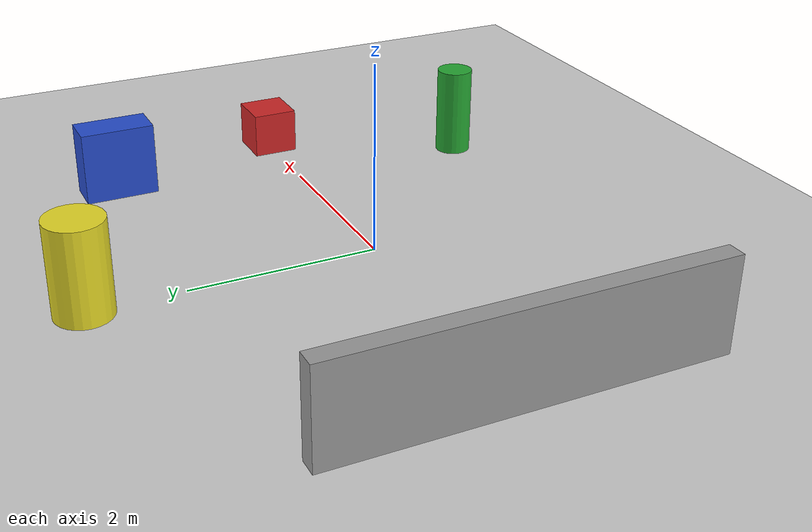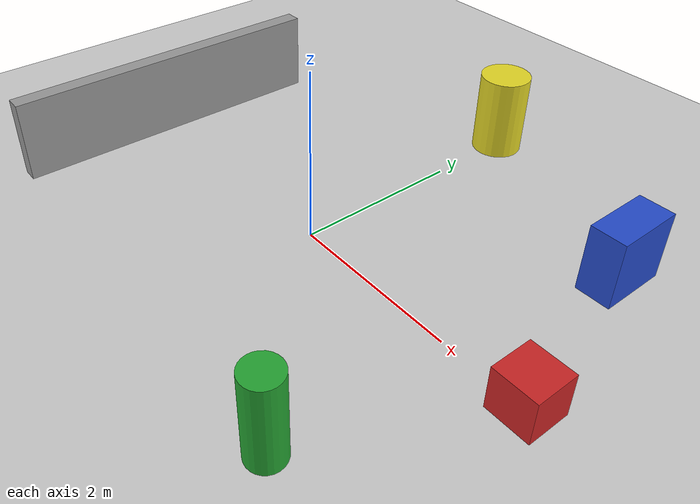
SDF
<?xml version="1.0" ?>
<sdf version="1.6">
  <world name="sensores">

    <include><uri>model://sun</uri></include>
    <include><uri>model://ground_plane</uri></include>

    <!-- Origem geográfica do mundo: UFPB, João Pessoa -->
    <spherical_coordinates>
      <surface_model>EARTH_WGS84</surface_model>
      <latitude_deg>-7.1395</latitude_deg>
      <longitude_deg>-34.8461</longitude_deg>
      <elevation>40.0</elevation>
      <heading_deg>180</heading_deg>
    </spherical_coordinates>

    <!-- Caixa vermelha bem à frente do robô (câmera e lidar) -->
    <model name="caixa_vermelha">
      <static>true</static>
      <pose>3 0 0.25 0 0 0</pose>
      <link name="link">
        <collision name="collision">
          <geometry><box><size>0.5 0.5 0.5</size></box></geometry>
        </collision>
        <visual name="visual">
          <geometry><box><size>0.5 0.5 0.5</size></box></geometry>
          <material><script>
            <uri>file://media/materials/scripts/gazebo.material</uri>
            <name>Gazebo/Red</name>
          </script></material>
        </visual>
      </link>
    </model>

    <!-- Caixa azul à frente e à esquerda -->
    <model name="caixa_azul">
      <static>true</static>
      <pose>2.5 2 0.4 0 0 0</pose>
      <link name="link">
        <collision name="collision">
          <geometry><box><size>0.4 0.8 0.8</size></box></geometry>
        </collision>
        <visual name="visual">
          <geometry><box><size>0.4 0.8 0.8</size></box></geometry>
          <material><script>
            <uri>file://media/materials/scripts/gazebo.material</uri>
            <name>Gazebo/Blue</name>
          </script></material>
        </visual>
      </link>
    </model>

    <!-- Cilindro verde à frente e à direita -->
    <model name="cilindro_verde">
      <static>true</static>
      <pose>2 -2 0.5 0 0 0</pose>
      <link name="link">
        <collision name="collision">
          <geometry><cylinder><radius>0.2</radius><length>1.0</length></cylinder></geometry>
        </collision>
        <visual name="visual">
          <geometry><cylinder><radius>0.2</radius><length>1.0</length></cylinder></geometry>
          <material><script>
            <uri>file://media/materials/scripts/gazebo.material</uri>
            <name>Gazebo/Green</name>
          </script></material>
        </visual>
      </link>
    </model>

    <!-- Cilindro amarelo à esquerda -->
    <model name="cilindro_amarelo">
      <static>true</static>
      <pose>0 3 0.5 0 0 0</pose>
      <link name="link">
        <collision name="collision">
          <geometry><cylinder><radius>0.3</radius><length>1.0</length></cylinder></geometry>
        </collision>
        <visual name="visual">
          <geometry><cylinder><radius>0.3</radius><length>1.0</length></cylinder></geometry>
          <material><script>
            <uri>file://media/materials/scripts/gazebo.material</uri>
            <name>Gazebo/Yellow</name>
          </script></material>
        </visual>
      </link>
    </model>

    <!-- Parede atrás do robô -->
    <model name="parede">
      <static>true</static>
      <pose>-3 0 0.5 0 0 0</pose>
      <link name="link">
        <collision name="collision">
          <geometry><box><size>0.2 4 1</size></box></geometry>
        </collision>
        <visual name="visual">
          <geometry><box><size>0.2 4 1</size></box></geometry>
          <material><script>
            <uri>file://media/materials/scripts/gazebo.material</uri>
            <name>Gazebo/Grey</name>
          </script></material>
        </visual>
      </link>
    </model>

  </world>
</sdf>
